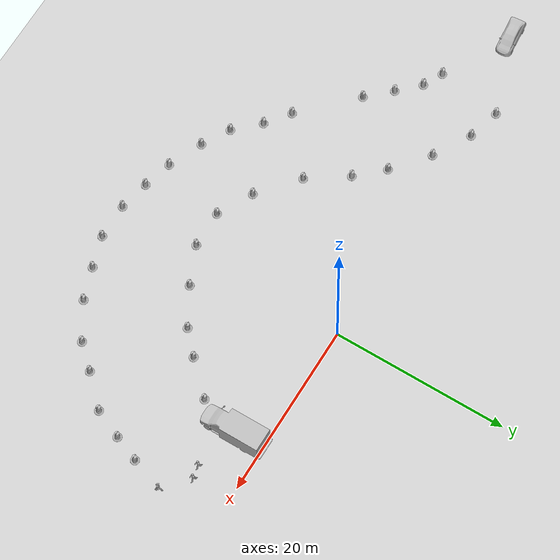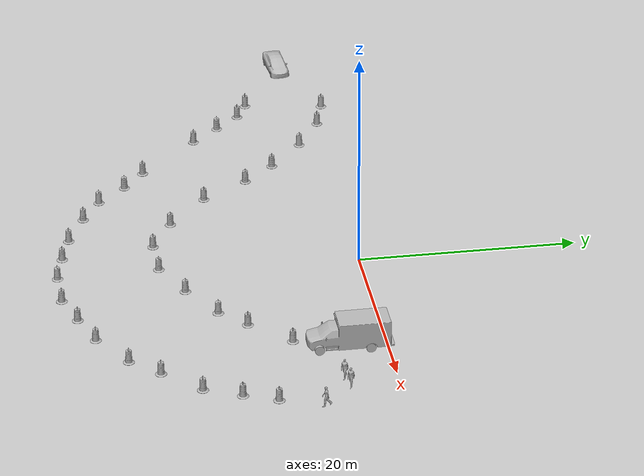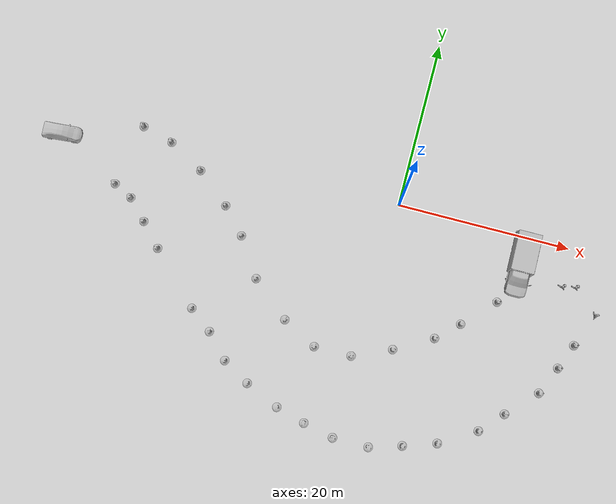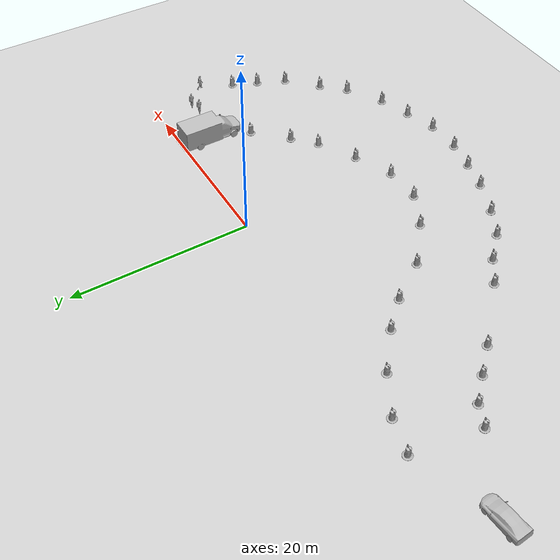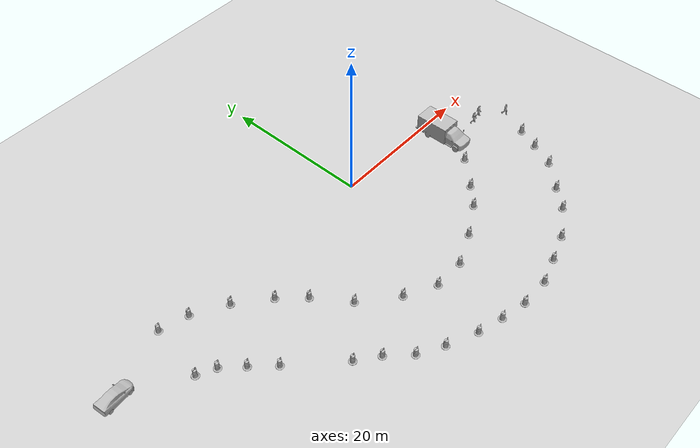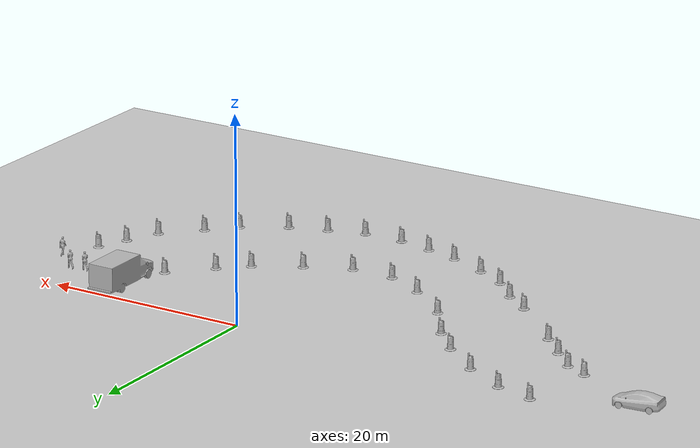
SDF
<sdf version="1.6">
 <world name="default">
  <scene>
   <sky><clouds><speed>12</speed></clouds></sky>
   <ambient>0.4 0.4 0.4 1</ambient>
   <background>0.7 0.7 0.7 1</background>
   <shadows>1</shadows>
  </scene>
  <light name="sun" type="directional">
   <pose>0 0 10 0 -0 0</pose>
   <diffuse>0.8 0.8 0.8 1</diffuse>
   <specular>0.2 0.2 0.2 1</specular>
   <attenuation>
    <range>1000</range>
    <constant>0.9</constant>
    <linear>0.01</linear>
    <quadratic>0.001</quadratic>
   </attenuation>
   <direction>-0.5 0.1 -0.9</direction>
  </light>
  <model name="ground_plane">
   <static>1</static>
   <link name="link">
    <collision name="collision">
     <geometry><plane><normal>0 0 1</normal><size>100 100</size></plane></geometry>
     <surface>
      <contact><collide_bitmask>65535</collide_bitmask></contact>
      <friction><ode><mu>100</mu><mu2>50</mu2></ode></friction>
     </surface>
    </collision>
    <visual name="visual">
     <cast_shadows>0</cast_shadows>
     <geometry><plane><normal>0 0 1</normal><size>100 100</size></plane></geometry>
     <material>
      <script><uri>file://media/materials/scripts/gazebo.material</uri><name>Gazebo/Grey</name></script>
     </material>
    </visual>
   </link>
  </model>
  <gravity>0 0 -9.8</gravity>
  <magnetic_field>6e-06 2.3e-05 -4.2e-05</magnetic_field>
  <atmosphere type="adiabatic"/>
  <physics name="default_physics" default="0" type="ode">
   <max_step_size>0.001</max_step_size>
   <real_time_factor>1</real_time_factor>
   <real_time_update_rate>1000</real_time_update_rate>
  </physics>
  <spherical_coordinates>
   <surface_model>EARTH_WGS84</surface_model>
   <latitude_deg>0</latitude_deg>
   <longitude_deg>0</longitude_deg>
   <elevation>0</elevation>
   <heading_deg>0</heading_deg>
  </spherical_coordinates>
  <model name="prius">
   <link name="base_link">
    <inertial>
     <mass>1</mass>
     <inertia><ixx>0.001</ixx><ixy>0</ixy><ixz>0</ixz><iyy>0.001</iyy><iyz>0</iyz><izz>0.001</izz></inertia>
    </inertial>
   </link>
   <link name="chassis">
    <pose>1.45 0 0 0 -0 1.57</pose>
    <inertial>
     <pose>-0 -0.002735 0.483209 0 -0 1.5708</pose>
     <mass>1371</mass>
     <inertia>
      <ixx>2591.3</ixx>
      <ixy>0.000184475</ixy>
      <ixz>-0.702035</ixz>
      <iyy>651.702</iyy>
      <iyz>2.57872e-06</iyz>
      <izz>2744.57</izz>
     </inertia>
    </inertial>
    <collision name="chassis_collision">
     <pose>0 0.05 0.625 0 -0 0</pose>
     <geometry><box><size>1.7526 2.1 0.95</size></box></geometry>
    </collision>
    <collision name="chassis_fixed_joint_lump__front_bumper_collision_1">
     <pose>0 -2 0.458488 0 -0 0</pose>
     <geometry><box><size>1.33728 0.48 0.566691</size></box></geometry>
    </collision>
    <collision name="chassis_fixed_joint_lump__hood_collision_2">
     <pose>0 -1.90084 0.676305 0.341247 -0 0</pose>
     <geometry><box><size>1.59797 0.493107 0.265468</size></box></geometry>
    </collision>
    <collision name="chassis_fixed_joint_lump__windshield_collision_3">
     <pose>0 -0.875105 1.03227 0.335476 -0 0</pose>
     <geometry><box><size>1.16838 1.65425 0.272347</size></box></geometry>
    </collision>
    <collision name="chassis_fixed_joint_lump__top_front_collision_4">
     <pose>0 0.161236 1.38604 0.13503 -0 0</pose>
     <geometry><box><size>1.27915 0.625988 0.171868</size></box></geometry>
    </collision>
    <collision name="chassis_fixed_joint_lump__top_rear_collision_5">
     <pose>0 0.817696 1.36007 -0.068997 0 0</pose>
     <geometry><box><size>1.28513 0.771189 0.226557</size></box></geometry>
    </collision>
    <collision name="chassis_fixed_joint_lump__rear_window_collision_6">
     <pose>0 1.64053 1.17513 -0.262017 0 0</pose>
     <geometry><box><size>1.26785 1.11634 0.244286</size></box></geometry>
    </collision>
    <collision name="chassis_fixed_joint_lump__trunk_collision_7">
     <pose>0 1.63706 0.88818 0 -0 0</pose>
     <geometry><box><size>1.78806 1.13899 0.482746</size></box></geometry>
    </collision>
    <collision name="chassis_fixed_joint_lump__back_bumper_collision_8">
     <pose>0 2.05445 0.57787 0 -0 0</pose>
     <geometry><box><size>1.78165 0.512093 0.581427</size></box></geometry>
    </collision>
    <visual name="chassis_visual">
     <geometry>
      <mesh><scale>0.01 0.01 0.01</scale><uri>model://../../prius_description/meshes/hybrid_body.obj</uri></mesh>
     </geometry>
    </visual>
    <sensor name="center_laser_sensor" type="ray">
     <ray>
      <scan>
       <horizontal>
        <samples>512</samples>
        <resolution>1</resolution>
        <min_angle>-3.14</min_angle>
        <max_angle>3.14</max_angle>
       </horizontal>
       <vertical><samples>16</samples><min_angle>-0.1</min_angle><max_angle>-0.35</max_angle></vertical>
      </scan>
      <range><min>0.2</min><max>30</max><resolution>0.01</resolution></range>
     </ray>
     <plugin name="center_laser" filename="libgazebo_ros_block_laser.so">
      <topicName>/prius/center_laser/scan</topicName>
      <frameName>center_laser_link</frameName>
      <gaussianNoise>0.01</gaussianNoise>
      <robotNamespace>/</robotNamespace>
     </plugin>
     <always_on>1</always_on>
     <update_rate>30</update_rate>
     <visualize>0</visualize>
     <pose>0 0.4 1.8 0 0 -1.5707</pose>
    </sensor>
    <sensor name="front_camera_sensor" type="camera">
     <update_rate>30</update_rate>
     <camera name="front_camera">
      <horizontal_fov>1.39626</horizontal_fov>
      <image><width>800</width><height>800</height><format>R8G8B8</format></image>
      <clip><near>0.02</near><far>300</far></clip>
      <noise><type>gaussian</type><mean>0</mean><stddev>0.007</stddev></noise>
     </camera>
     <plugin name="front_camera_controller" filename="libgazebo_ros_camera.so">
      <alwaysOn>1</alwaysOn>
      <updateRate>0.0</updateRate>
      <cameraName>/prius/front_camera</cameraName>
      <imageTopicName>image_raw</imageTopicName>
      <cameraInfoTopicName>/prius/front_camera_info</cameraInfoTopicName>
      <frameName>camera_link</frameName>
      <hackBaseline>0.07</hackBaseline>
      <distortionK1>0.0</distortionK1>
      <distortionK2>0.0</distortionK2>
      <distortionK3>0.0</distortionK3>
      <distortionT1>0.0</distortionT1>
      <distortionT2>0.0</distortionT2>
      <robotNamespace>/</robotNamespace>
     </plugin>
     <pose>0 -0.4 1.4 0 0.05 -1.5707</pose>
    </sensor>
   </link>
   <joint name="base_link_connection" type="revolute">
    <child>chassis</child>
    <parent>base_link</parent>
    <axis>
     <limit><lower>0</lower><upper>0</upper></limit>
     <dynamics>
      <damping>0</damping>
      <friction>0</friction>
      <spring_reference>0</spring_reference>
      <spring_stiffness>0</spring_stiffness>
     </dynamics>
     <use_parent_model_frame>1</use_parent_model_frame>
     <xyz>0 0 1</xyz>
    </axis>
    <physics><ode><limit><cfm>0</cfm><erp>0.2</erp></limit></ode></physics>
   </joint>
   <link name="fl_axle">
    <pose>2.86061 0.765877 0.3 0 -0 1.57</pose>
    <inertial>
     <mass>1</mass>
     <inertia><ixx>0.004</ixx><ixy>0</ixy><ixz>0</ixz><iyy>0.004</iyy><iyz>0</iyz><izz>0.004</izz></inertia>
    </inertial>
   </link>
   <joint name="front_left_steer_joint" type="revolute">
    <child>fl_axle</child>
    <parent>chassis</parent>
    <axis>
     <xyz>0 0 1</xyz>
     <limit><lower>-1e+16</lower><upper>1e+16</upper></limit>
     <dynamics><spring_reference>0</spring_reference><spring_stiffness>0</spring_stiffness></dynamics>
     <use_parent_model_frame>1</use_parent_model_frame>
    </axis>
   </joint>
   <link name="front_left_wheel">
    <pose>2.86061 0.765877 0.3 0 -0 1.57</pose>
    <inertial>
     <mass>11</mass>
     <inertia>
      <ixx>0.586312</ixx>
      <ixy>0</ixy>
      <ixz>0</ixz>
      <iyy>0.335529</iyy>
      <iyz>0</iyz>
      <izz>0.335529</izz>
     </inertia>
    </inertial>
    <collision name="front_left_wheel_collision_collision">
     <geometry><sphere><radius>0.31265</radius></sphere></geometry>
     <surface>
      <contact><ode><kp>1e+08</kp><min_depth>0.005</min_depth></ode></contact>
      <friction><ode><mu>0.9</mu><mu2>0.9</mu2></ode></friction>
     </surface>
    </collision>
    <visual name="front_left_wheel_visual">
     <geometry>
      <mesh><scale>0.01 0.01 0.01</scale><uri>model://../../prius_description/meshes/wheel.obj</uri></mesh>
     </geometry>
     <material><script><uri>__default__</uri><name>__default__</name></script></material>
    </visual>
   </link>
   <joint name="front_left_wheel_joint" type="revolute">
    <child>front_left_wheel</child>
    <parent>fl_axle</parent>
    <axis>
     <xyz>0.000796 1 0</xyz>
     <limit><lower>-1e+16</lower><upper>1e+16</upper></limit>
     <dynamics><spring_reference>0</spring_reference><spring_stiffness>0</spring_stiffness></dynamics>
     <use_parent_model_frame>1</use_parent_model_frame>
    </axis>
   </joint>
   <link name="fr_axle">
    <pose>2.85939 -0.768123 0.3 0 -0 1.57</pose>
    <inertial>
     <mass>1</mass>
     <inertia><ixx>0.004</ixx><ixy>0</ixy><ixz>0</ixz><iyy>0.004</iyy><iyz>0</iyz><izz>0.004</izz></inertia>
    </inertial>
   </link>
   <joint name="front_right_steer_joint" type="revolute">
    <child>fr_axle</child>
    <parent>chassis</parent>
    <axis>
     <xyz>0 0 1</xyz>
     <limit><lower>-1e+16</lower><upper>1e+16</upper></limit>
     <dynamics><spring_reference>0</spring_reference><spring_stiffness>0</spring_stiffness></dynamics>
     <use_parent_model_frame>1</use_parent_model_frame>
    </axis>
   </joint>
   <link name="front_right_wheel">
    <pose>2.85939 -0.768123 0.3 0 -0 1.57</pose>
    <inertial>
     <mass>11</mass>
     <inertia>
      <ixx>0.586312</ixx>
      <ixy>0</ixy>
      <ixz>0</ixz>
      <iyy>0.335529</iyy>
      <iyz>0</iyz>
      <izz>0.335529</izz>
     </inertia>
    </inertial>
    <collision name="front_right_wheel_collision_collision">
     <geometry><sphere><radius>0.31265</radius></sphere></geometry>
     <surface>
      <contact><ode><kp>1e+08</kp><min_depth>0.005</min_depth></ode></contact>
      <friction><ode><mu>0.9</mu><mu2>0.9</mu2></ode></friction>
     </surface>
    </collision>
    <visual name="front_right_wheel_visual">
     <geometry>
      <mesh><scale>0.01 0.01 0.01</scale><uri>model://../../prius_description/meshes/wheel.obj</uri></mesh>
     </geometry>
     <material><script><uri>__default__</uri><name>__default__</name></script></material>
    </visual>
   </link>
   <joint name="front_right_wheel_joint" type="revolute">
    <child>front_right_wheel</child>
    <parent>fr_axle</parent>
    <axis>
     <xyz>0.000796 1 0</xyz>
     <limit><lower>-1e+16</lower><upper>1e+16</upper></limit>
     <dynamics><spring_reference>0</spring_reference><spring_stiffness>0</spring_stiffness></dynamics>
     <use_parent_model_frame>1</use_parent_model_frame>
    </axis>
   </joint>
   <link name="rear_left_wheel">
    <pose>0.000632 0.794154 0.3 0 -0 1.57</pose>
    <inertial>
     <mass>11</mass>
     <inertia>
      <ixx>0.586312</ixx>
      <ixy>0</ixy>
      <ixz>0</ixz>
      <iyy>0.335529</iyy>
      <iyz>0</iyz>
      <izz>0.335529</izz>
     </inertia>
    </inertial>
    <collision name="rear_left_wheel_collision_collision">
     <geometry><sphere><radius>0.31265</radius></sphere></geometry>
     <surface>
      <contact><ode><kp>1e+08</kp><min_depth>0.005</min_depth></ode></contact>
      <friction><ode><mu>0.9</mu><mu2>0.9</mu2></ode></friction>
     </surface>
    </collision>
    <visual name="rear_left_wheel_visual">
     <geometry>
      <mesh><scale>0.01 0.01 0.01</scale><uri>model://../../prius_description/meshes/wheel.obj</uri></mesh>
     </geometry>
     <material><script><uri>__default__</uri><name>__default__</name></script></material>
    </visual>
   </link>
   <joint name="rear_left_wheel_joint" type="revolute">
    <child>rear_left_wheel</child>
    <parent>chassis</parent>
    <axis>
     <xyz>0.000796 1 0</xyz>
     <limit><lower>-1e+16</lower><upper>1e+16</upper></limit>
     <dynamics><spring_reference>0</spring_reference><spring_stiffness>0</spring_stiffness></dynamics>
     <use_parent_model_frame>1</use_parent_model_frame>
    </axis>
   </joint>
   <link name="rear_right_wheel">
    <pose>-0.000631 -0.791845 0.3 0 -0 1.57</pose>
    <inertial>
     <mass>11</mass>
     <inertia>
      <ixx>0.586312</ixx>
      <ixy>0</ixy>
      <ixz>0</ixz>
      <iyy>0.335529</iyy>
      <iyz>0</iyz>
      <izz>0.335529</izz>
     </inertia>
    </inertial>
    <collision name="rear_right_wheel_collision_collision">
     <geometry><sphere><radius>0.31265</radius></sphere></geometry>
     <surface>
      <contact><ode><kp>1e+08</kp><min_depth>0.005</min_depth></ode></contact>
      <friction><ode><mu>0.9</mu><mu2>0.9</mu2></ode></friction>
     </surface>
    </collision>
    <visual name="rear_right_wheel_visual">
     <geometry>
      <mesh><scale>0.01 0.01 0.01</scale><uri>model://../../prius_description/meshes/wheel.obj</uri></mesh>
     </geometry>
     <material><script><uri>__default__</uri><name>__default__</name></script></material>
    </visual>
   </link>
   <joint name="rear_right_wheel_joint" type="revolute">
    <child>rear_right_wheel</child>
    <parent>chassis</parent>
    <axis>
     <xyz>0.000796 1 0</xyz>
     <limit><lower>-1e+16</lower><upper>1e+16</upper></limit>
     <dynamics><spring_reference>0</spring_reference><spring_stiffness>0</spring_stiffness></dynamics>
     <use_parent_model_frame>1</use_parent_model_frame>
    </axis>
   </joint>
   <link name="steering_wheel">
    <pose>2.07815 0.357234 0.988243 -1.3021 0 1.57</pose>
    <inertial>
     <mass>1</mass>
     <inertia><ixx>0.145833</ixx><ixy>0</ixy><ixz>0</ixz><iyy>0.145833</iyy><iyz>0</iyz><izz>0.125</izz></inertia>
    </inertial>
    <visual name="steering_wheel_visual">
     <pose>0 0 0 1.3021 -0 0</pose>
     <geometry>
      <mesh><scale>0.01 0.01 0.01</scale><uri>model://../../prius_description/meshes/steering_wheel.obj</uri></mesh>
     </geometry>
    </visual>
   </link>
   <joint name="steering_joint" type="revolute">
    <child>steering_wheel</child>
    <parent>chassis</parent>
    <axis>
     <xyz>-0.964118 0.000768 0.265474</xyz>
     <limit><lower>-1e+16</lower><upper>1e+16</upper></limit>
     <dynamics><spring_reference>0</spring_reference><spring_stiffness>0</spring_stiffness></dynamics>
     <use_parent_model_frame>1</use_parent_model_frame>
    </axis>
   </joint>
   <plugin name="pruis_hybrid_drive" filename="libPriusHybridPlugin.so">
    <chassis>chassis</chassis>
    <front_left_wheel>front_left_wheel_joint</front_left_wheel>
    <front_right_wheel>front_right_wheel_joint</front_right_wheel>
    <front_left_wheel_steering>front_left_steer_joint</front_left_wheel_steering>
    <front_right_wheel_steering>front_right_steer_joint</front_right_wheel_steering>
    <back_left_wheel>rear_left_wheel_joint</back_left_wheel>
    <back_right_wheel>rear_right_wheel_joint</back_right_wheel>
    <steering_wheel>steering_joint</steering_wheel>
    <chassis_aero_force_gain>0.63045</chassis_aero_force_gain>
    <front_torque>859.4004393000001</front_torque>
    <back_torque>0</back_torque>
    <front_brake_torque>1031.28052716</front_brake_torque>
    <back_brake_torque>687.5203514400001</back_brake_torque>
    <max_speed>5</max_speed>
    <min_gas_flow>8.981854013171626e-05</min_gas_flow>
    <gas_efficiency>0.371</gas_efficiency>
    <battery_charge_watt_hours>291</battery_charge_watt_hours>
    <battery_discharge_watt_hours>214</battery_discharge_watt_hours>
    <max_steer>0.6458</max_steer>
    <flwheel_steering_p_gain>1e4</flwheel_steering_p_gain>
    <frwheel_steering_p_gain>1e4</frwheel_steering_p_gain>
    <flwheel_steering_i_gain>0</flwheel_steering_i_gain>
    <frwheel_steering_i_gain>0</frwheel_steering_i_gain>
    <flwheel_steering_d_gain>3e2</flwheel_steering_d_gain>
    <frwheel_steering_d_gain>3e2</frwheel_steering_d_gain>
    <robotNamespace>/</robotNamespace>
   </plugin>
   <plugin name="joint_state_publisher" filename="libgazebo_ros_joint_state_publisher.so">
    <jointName>rear_right_wheel_joint, rear_left_wheel_joint, front_right_wheel_joint, front_left_wheel_joint, front_right_steer_joint, front_left_steer_joint, steering_joint</jointName>
    <updateRate>100.0</updateRate>
    <alwaysOn>1</alwaysOn>
    <robotNamespace>/</robotNamespace>
   </plugin>
   <static>0</static>
   <plugin name="p3d" filename="libgazebo_ros_p3d.so">
    <bodyName>base_link</bodyName>
    <topicName>base_pose_ground_truth</topicName>
    <frameName>map</frameName>
    <updateRate>100.0</updateRate>
    <robotNamespace>/</robotNamespace>
   </plugin>
   <pose>-41.4114 -1.92893 0.006903 0 0.000236 0.087765</pose>
  </model>
  <model name="Construction Barrel">
   <link name="link">
    <inertial>
     <pose>0 0 0.4 0 -0 0</pose>
     <mass>500</mass>
     <inertia><ixx>51.2096</ixx><iyy>51.2096</iyy><izz>25</izz><ixy>0</ixy><ixz>0</ixz><iyz>0</iyz></inertia>
    </inertial>
    <collision name="collision">
     <geometry><mesh><uri>model://construction_barrel/meshes/construction_barrel.dae</uri></mesh></geometry>
    </collision>
    <visual name="visual">
     <geometry><mesh><uri>model://construction_barrel/meshes/construction_barrel.dae</uri></mesh></geometry>
    </visual>
   </link>
   <pose>-31.1944 1.41582 -2e-06 6e-06 -4e-06 -2.3e-05</pose>
  </model>
  <model name="Construction Barrel_0">
   <link name="link">
    <inertial>
     <pose>0 0 0.4 0 -0 0</pose>
     <mass>500</mass>
     <inertia><ixx>51.2096</ixx><iyy>51.2096</iyy><izz>25</izz><ixy>0</ixy><ixz>0</ixz><iyz>0</iyz></inertia>
    </inertial>
    <collision name="collision">
     <geometry><mesh><uri>model://construction_barrel/meshes/construction_barrel.dae</uri></mesh></geometry>
    </collision>
    <visual name="visual">
     <geometry><mesh><uri>model://construction_barrel/meshes/construction_barrel.dae</uri></mesh></geometry>
    </visual>
   </link>
   <pose>-27.4893 0.429471 -2e-06 6e-06 -4e-06 -2.2e-05</pose>
  </model>
  <model name="Construction Barrel_1">
   <link name="link">
    <inertial>
     <pose>0 0 0.4 0 -0 0</pose>
     <mass>500</mass>
     <inertia><ixx>51.2096</ixx><iyy>51.2096</iyy><izz>25</izz><ixy>0</ixy><ixz>0</ixz><iyz>0</iyz></inertia>
    </inertial>
    <collision name="collision">
     <geometry><mesh><uri>model://construction_barrel/meshes/construction_barrel.dae</uri></mesh></geometry>
    </collision>
    <visual name="visual">
     <geometry><mesh><uri>model://construction_barrel/meshes/construction_barrel.dae</uri></mesh></geometry>
    </visual>
   </link>
   <pose>-23.2751 -1.96116 -2e-06 6e-06 -4e-06 -2.1e-05</pose>
  </model>
  <model name="Construction Barrel_2">
   <link name="link">
    <inertial>
     <pose>0 0 0.4 0 -0 0</pose>
     <mass>500</mass>
     <inertia><ixx>51.2096</ixx><iyy>51.2096</iyy><izz>25</izz><ixy>0</ixy><ixz>0</ixz><iyz>0</iyz></inertia>
    </inertial>
    <collision name="collision">
     <geometry><mesh><uri>model://construction_barrel/meshes/construction_barrel.dae</uri></mesh></geometry>
    </collision>
    <visual name="visual">
     <geometry><mesh><uri>model://construction_barrel/meshes/construction_barrel.dae</uri></mesh></geometry>
    </visual>
   </link>
   <pose>-19.3142 -5.21222 -2e-06 6e-06 -4e-06 -2e-05</pose>
  </model>
  <model name="Construction Barrel_1_clone">
   <link name="link">
    <inertial>
     <pose>0 0 0.4 0 -0 0</pose>
     <mass>500</mass>
     <inertia><ixx>51.2096</ixx><iyy>51.2096</iyy><izz>25</izz><ixy>0</ixy><ixz>0</ixz><iyz>0</iyz></inertia>
    </inertial>
    <collision name="collision">
     <geometry><mesh><uri>model://construction_barrel/meshes/construction_barrel.dae</uri></mesh></geometry>
    </collision>
    <visual name="visual">
     <geometry><mesh><uri>model://construction_barrel/meshes/construction_barrel.dae</uri></mesh></geometry>
    </visual>
   </link>
   <pose>-16.5963 -8.13898 -2e-06 6e-06 -4e-06 -2e-05</pose>
  </model>
  <model name="Construction Barrel_1_clone_0">
   <link name="link">
    <inertial>
     <pose>0 0 0.4 0 -0 0</pose>
     <mass>500</mass>
     <inertia><ixx>51.2096</ixx><iyy>51.2096</iyy><izz>25</izz><ixy>0</ixy><ixz>0</ixz><iyz>0</iyz></inertia>
    </inertial>
    <collision name="collision">
     <geometry><mesh><uri>model://construction_barrel/meshes/construction_barrel.dae</uri></mesh></geometry>
    </collision>
    <visual name="visual">
     <geometry><mesh><uri>model://construction_barrel/meshes/construction_barrel.dae</uri></mesh></geometry>
    </visual>
   </link>
   <pose>-13.64 -12.4685 -2e-06 6e-06 -4e-06 -2e-05</pose>
  </model>
  <model name="Construction Barrel_1_clone_1">
   <link name="link">
    <inertial>
     <pose>0 0 0.4 0 -0 0</pose>
     <mass>500</mass>
     <inertia><ixx>51.2096</ixx><iyy>51.2096</iyy><izz>25</izz><ixy>0</ixy><ixz>0</ixz><iyz>0</iyz></inertia>
    </inertial>
    <collision name="collision">
     <geometry><mesh><uri>model://construction_barrel/meshes/construction_barrel.dae</uri></mesh></geometry>
    </collision>
    <visual name="visual">
     <geometry><mesh><uri>model://construction_barrel/meshes/construction_barrel.dae</uri></mesh></geometry>
    </visual>
   </link>
   <pose>-32.4126 -6.0217 -2e-06 6e-06 -4e-06 -1.9e-05</pose>
  </model>
  <model name="Construction Barrel_1_clone_2">
   <link name="link">
    <inertial>
     <pose>0 0 0.4 0 -0 0</pose>
     <mass>500</mass>
     <inertia><ixx>51.2096</ixx><iyy>51.2096</iyy><izz>25</izz><ixy>0</ixy><ixz>0</ixz><iyz>0</iyz></inertia>
    </inertial>
    <collision name="collision">
     <geometry><mesh><uri>model://construction_barrel/meshes/construction_barrel.dae</uri></mesh></geometry>
    </collision>
    <visual name="visual">
     <geometry><mesh><uri>model://construction_barrel/meshes/construction_barrel.dae</uri></mesh></geometry>
    </visual>
   </link>
   <pose>-30.1669 -7.12313 -2e-06 6e-06 -4e-06 -1.9e-05</pose>
  </model>
  <model name="Construction Barrel_1_clone_3">
   <link name="link">
    <inertial>
     <pose>0 0 0.4 0 -0 0</pose>
     <mass>500</mass>
     <inertia><ixx>51.2096</ixx><iyy>51.2096</iyy><izz>25</izz><ixy>0</ixy><ixz>0</ixz><iyz>0</iyz></inertia>
    </inertial>
    <collision name="collision">
     <geometry><mesh><uri>model://construction_barrel/meshes/construction_barrel.dae</uri></mesh></geometry>
    </collision>
    <visual name="visual">
     <geometry><mesh><uri>model://construction_barrel/meshes/construction_barrel.dae</uri></mesh></geometry>
    </visual>
   </link>
   <pose>-27.9078 -9.42812 -2e-06 6e-06 -4e-06 -1.9e-05</pose>
  </model>
  <model name="Construction Barrel_1_clone_4">
   <link name="link">
    <inertial>
     <pose>0 0 0.4 0 -0 0</pose>
     <mass>500</mass>
     <inertia><ixx>51.2096</ixx><iyy>51.2096</iyy><izz>25</izz><ixy>0</ixy><ixz>0</ixz><iyz>0</iyz></inertia>
    </inertial>
    <collision name="collision">
     <geometry><mesh><uri>model://construction_barrel/meshes/construction_barrel.dae</uri></mesh></geometry>
    </collision>
    <visual name="visual">
     <geometry><mesh><uri>model://construction_barrel/meshes/construction_barrel.dae</uri></mesh></geometry>
    </visual>
   </link>
   <pose>-25.4558 -12.0164 -2e-06 6e-06 -4e-06 -1.9e-05</pose>
  </model>
  <model name="Construction Barrel_1_clone_5">
   <link name="link">
    <inertial>
     <pose>0 0 0.4 0 -0 0</pose>
     <mass>500</mass>
     <inertia><ixx>51.2096</ixx><iyy>51.2096</iyy><izz>25</izz><ixy>0</ixy><ixz>0</ixz><iyz>0</iyz></inertia>
    </inertial>
    <collision name="collision">
     <geometry><mesh><uri>model://construction_barrel/meshes/construction_barrel.dae</uri></mesh></geometry>
    </collision>
    <visual name="visual">
     <geometry><mesh><uri>model://construction_barrel/meshes/construction_barrel.dae</uri></mesh></geometry>
    </visual>
   </link>
   <pose>-19.7495 -17.5857 -2e-06 6e-06 -4e-06 -1.9e-05</pose>
  </model>
  <model name="Construction Barrel_1_clone_6">
   <link name="link">
    <inertial>
     <pose>0 0 0.4 0 -0 0</pose>
     <mass>500</mass>
     <inertia><ixx>51.2096</ixx><iyy>51.2096</iyy><izz>25</izz><ixy>0</ixy><ixz>0</ixz><iyz>0</iyz></inertia>
    </inertial>
    <collision name="collision">
     <geometry><mesh><uri>model://construction_barrel/meshes/construction_barrel.dae</uri></mesh></geometry>
    </collision>
    <visual name="visual">
     <geometry><mesh><uri>model://construction_barrel/meshes/construction_barrel.dae</uri></mesh></geometry>
    </visual>
   </link>
   <pose>-17.0943 -19.6017 -2e-06 6e-06 -4e-06 -1.9e-05</pose>
  </model>
  <model name="Construction Barrel_1_clone_8">
   <link name="link">
    <inertial>
     <pose>0 0 0.4 0 -0 0</pose>
     <mass>500</mass>
     <inertia><ixx>51.2096</ixx><iyy>51.2096</iyy><izz>25</izz><ixy>0</ixy><ixz>0</ixz><iyz>0</iyz></inertia>
    </inertial>
    <collision name="collision">
     <geometry><mesh><uri>model://construction_barrel/meshes/construction_barrel.dae</uri></mesh></geometry>
    </collision>
    <visual name="visual">
     <geometry><mesh><uri>model://construction_barrel/meshes/construction_barrel.dae</uri></mesh></geometry>
    </visual>
   </link>
   <pose>-9.24704 -16.1333 -2e-06 6e-06 -4e-06 -1.9e-05</pose>
  </model>
  <model name="Construction Barrel_1_clone_7">
   <link name="link">
    <inertial>
     <pose>0 0 0.4 0 -0 0</pose>
     <mass>500</mass>
     <inertia><ixx>51.2096</ixx><iyy>51.2096</iyy><izz>25</izz><ixy>0</ixy><ixz>0</ixz><iyz>0</iyz></inertia>
    </inertial>
    <collision name="collision">
     <geometry><mesh><uri>model://construction_barrel/meshes/construction_barrel.dae</uri></mesh></geometry>
    </collision>
    <visual name="visual">
     <geometry><mesh><uri>model://construction_barrel/meshes/construction_barrel.dae</uri></mesh></geometry>
    </visual>
   </link>
   <pose>-14.5323 -22.2554 -2e-06 6e-06 -4e-06 -1.8e-05</pose>
  </model>
  <model name="Construction Barrel_1_clone_9">
   <link name="link">
    <inertial>
     <pose>0 0 0.4 0 -0 0</pose>
     <mass>500</mass>
     <inertia><ixx>51.2096</ixx><iyy>51.2096</iyy><izz>25</izz><ixy>0</ixy><ixz>0</ixz><iyz>0</iyz></inertia>
    </inertial>
    <collision name="collision">
     <geometry><mesh><uri>model://construction_barrel/meshes/construction_barrel.dae</uri></mesh></geometry>
    </collision>
    <visual name="visual">
     <geometry><mesh><uri>model://construction_barrel/meshes/construction_barrel.dae</uri></mesh></geometry>
    </visual>
   </link>
   <pose>-11.4295 -24.0213 -2e-06 6e-06 -4e-06 -2.6e-05</pose>
  </model>
  <model name="Construction Barrel_1_clone_10">
   <link name="link">
    <inertial>
     <pose>0 0 0.4 0 -0 0</pose>
     <mass>500</mass>
     <inertia><ixx>51.2096</ixx><iyy>51.2096</iyy><izz>25</izz><ixy>0</ixy><ixz>0</ixz><iyz>0</iyz></inertia>
    </inertial>
    <collision name="collision">
     <geometry><mesh><uri>model://construction_barrel/meshes/construction_barrel.dae</uri></mesh></geometry>
    </collision>
    <visual name="visual">
     <geometry><mesh><uri>model://construction_barrel/meshes/construction_barrel.dae</uri></mesh></geometry>
    </visual>
   </link>
   <pose>-7.55242 -25.6931 -2e-06 6e-06 -4e-06 -1.6e-05</pose>
  </model>
  <model name="Construction Barrel_1_clone_11">
   <link name="link">
    <inertial>
     <pose>0 0 0.4 0 -0 0</pose>
     <mass>500</mass>
     <inertia><ixx>51.2096</ixx><iyy>51.2096</iyy><izz>25</izz><ixy>0</ixy><ixz>0</ixz><iyz>0</iyz></inertia>
    </inertial>
    <collision name="collision">
     <geometry><mesh><uri>model://construction_barrel/meshes/construction_barrel.dae</uri></mesh></geometry>
    </collision>
    <visual name="visual">
     <geometry><mesh><uri>model://construction_barrel/meshes/construction_barrel.dae</uri></mesh></geometry>
    </visual>
   </link>
   <pose>-4.21758 -26.5821 -2e-06 6e-06 -4e-06 -2.6e-05</pose>
  </model>
  <model name="Construction Barrel_1_clone_12">
   <link name="link">
    <inertial>
     <pose>0 0 0.4 0 -0 0</pose>
     <mass>500</mass>
     <inertia><ixx>51.2096</ixx><iyy>51.2096</iyy><izz>25</izz><ixy>0</ixy><ixz>0</ixz><iyz>0</iyz></inertia>
    </inertial>
    <collision name="collision">
     <geometry><mesh><uri>model://construction_barrel/meshes/construction_barrel.dae</uri></mesh></geometry>
    </collision>
    <visual name="visual">
     <geometry><mesh><uri>model://construction_barrel/meshes/construction_barrel.dae</uri></mesh></geometry>
    </visual>
   </link>
   <pose>-0.751617 -27.2982 -2e-06 6e-06 -4e-06 -1.6e-05</pose>
  </model>
  <model name="Construction Barrel_1_clone_13">
   <link name="link">
    <inertial>
     <pose>0 0 0.4 0 -0 0</pose>
     <mass>500</mass>
     <inertia><ixx>51.2096</ixx><iyy>51.2096</iyy><izz>25</izz><ixy>0</ixy><ixz>0</ixz><iyz>0</iyz></inertia>
    </inertial>
    <collision name="collision">
     <geometry><mesh><uri>model://construction_barrel/meshes/construction_barrel.dae</uri></mesh></geometry>
    </collision>
    <visual name="visual">
     <geometry><mesh><uri>model://construction_barrel/meshes/construction_barrel.dae</uri></mesh></geometry>
    </visual>
   </link>
   <pose>3.3025 -27.2616 -2e-06 6e-06 -4e-06 -2.6e-05</pose>
  </model>
  <model name="Construction Barrel_1_clone_14">
   <link name="link">
    <inertial>
     <pose>0 0 0.4 0 -0 0</pose>
     <mass>500</mass>
     <inertia><ixx>51.2096</ixx><iyy>51.2096</iyy><izz>25</izz><ixy>0</ixy><ixz>0</ixz><iyz>0</iyz></inertia>
    </inertial>
    <collision name="collision">
     <geometry><mesh><uri>model://construction_barrel/meshes/construction_barrel.dae</uri></mesh></geometry>
    </collision>
    <visual name="visual">
     <geometry><mesh><uri>model://construction_barrel/meshes/construction_barrel.dae</uri></mesh></geometry>
    </visual>
   </link>
   <pose>6.87565 -26.167 -2e-06 6e-06 -4e-06 -2.6e-05</pose>
  </model>
  <model name="Construction Barrel_1_clone_15">
   <link name="link">
    <inertial>
     <pose>0 0 0.4 0 -0 0</pose>
     <mass>500</mass>
     <inertia><ixx>51.2096</ixx><iyy>51.2096</iyy><izz>25</izz><ixy>0</ixy><ixz>0</ixz><iyz>0</iyz></inertia>
    </inertial>
    <collision name="collision">
     <geometry><mesh><uri>model://construction_barrel/meshes/construction_barrel.dae</uri></mesh></geometry>
    </collision>
    <visual name="visual">
     <geometry><mesh><uri>model://construction_barrel/meshes/construction_barrel.dae</uri></mesh></geometry>
    </visual>
   </link>
   <pose>10.5338 -24.9223 -2e-06 6e-06 -4e-06 -2.6e-05</pose>
  </model>
  <model name="Construction Barrel_1_clone_16">
   <link name="link">
    <inertial>
     <pose>0 0 0.4 0 -0 0</pose>
     <mass>500</mass>
     <inertia><ixx>51.2096</ixx><iyy>51.2096</iyy><izz>25</izz><ixy>0</ixy><ixz>0</ixz><iyz>0</iyz></inertia>
    </inertial>
    <collision name="collision">
     <geometry><mesh><uri>model://construction_barrel/meshes/construction_barrel.dae</uri></mesh></geometry>
    </collision>
    <visual name="visual">
     <geometry><mesh><uri>model://construction_barrel/meshes/construction_barrel.dae</uri></mesh></geometry>
    </visual>
   </link>
   <pose>14.607 -22.4607 -2e-06 6e-06 -4e-06 -1.6e-05</pose>
  </model>
  <model name="Construction Barrel_1_clone_17">
   <link name="link">
    <inertial>
     <pose>0 0 0.4 0 -0 0</pose>
     <mass>500</mass>
     <inertia><ixx>51.2096</ixx><iyy>51.2096</iyy><izz>25</izz><ixy>0</ixy><ixz>0</ixz><iyz>0</iyz></inertia>
    </inertial>
    <collision name="collision">
     <geometry><mesh><uri>model://construction_barrel/meshes/construction_barrel.dae</uri></mesh></geometry>
    </collision>
    <visual name="visual">
     <geometry><mesh><uri>model://construction_barrel/meshes/construction_barrel.dae</uri></mesh></geometry>
    </visual>
   </link>
   <pose>16.9853 -19.9398 -2e-06 6e-06 -4e-06 -2.6e-05</pose>
  </model>
  <model name="Construction Barrel_1_clone_18">
   <link name="link">
    <inertial>
     <pose>0 0 0.4 0 -0 0</pose>
     <mass>500</mass>
     <inertia><ixx>51.2096</ixx><iyy>51.2096</iyy><izz>25</izz><ixy>0</ixy><ixz>0</ixz><iyz>0</iyz></inertia>
    </inertial>
    <collision name="collision">
     <geometry><mesh><uri>model://construction_barrel/meshes/construction_barrel.dae</uri></mesh></geometry>
    </collision>
    <visual name="visual">
     <geometry><mesh><uri>model://construction_barrel/meshes/construction_barrel.dae</uri></mesh></geometry>
    </visual>
   </link>
   <pose>20.1695 -16.7317 -2e-06 6e-06 -4e-06 -2.6e-05</pose>
  </model>
  <model name="Construction Barrel_1_clone_19">
   <link name="link">
    <inertial>
     <pose>0 0 0.4 0 -0 0</pose>
     <mass>500</mass>
     <inertia><ixx>51.2096</ixx><iyy>51.2096</iyy><izz>25</izz><ixy>0</ixy><ixz>0</ixz><iyz>0</iyz></inertia>
    </inertial>
    <collision name="collision">
     <geometry><mesh><uri>model://construction_barrel/meshes/construction_barrel.dae</uri></mesh></geometry>
    </collision>
    <visual name="visual">
     <geometry><mesh><uri>model://construction_barrel/meshes/construction_barrel.dae</uri></mesh></geometry>
    </visual>
   </link>
   <pose>21.6222 -13.5108 -2e-06 6e-06 -4e-06 -2.6e-05</pose>
  </model>
  <model name="Construction Barrel_1_clone_20">
   <link name="link">
    <inertial>
     <pose>0 0 0.4 0 -0 0</pose>
     <mass>500</mass>
     <inertia><ixx>51.2096</ixx><iyy>51.2096</iyy><izz>25</izz><ixy>0</ixy><ixz>0</ixz><iyz>0</iyz></inertia>
    </inertial>
    <collision name="collision">
     <geometry><mesh><uri>model://construction_barrel/meshes/construction_barrel.dae</uri></mesh></geometry>
    </collision>
    <visual name="visual">
     <geometry><mesh><uri>model://construction_barrel/meshes/construction_barrel.dae</uri></mesh></geometry>
    </visual>
   </link>
   <pose>-5.27894 -18.187 -2e-06 6e-06 -4e-06 -1.6e-05</pose>
  </model>
  <model name="Construction Barrel_1_clone_21">
   <link name="link">
    <inertial>
     <pose>0 0 0.4 0 -0 0</pose>
     <mass>500</mass>
     <inertia><ixx>51.2096</ixx><iyy>51.2096</iyy><izz>25</izz><ixy>0</ixy><ixz>0</ixz><iyz>0</iyz></inertia>
    </inertial>
    <collision name="collision">
     <geometry><mesh><uri>model://construction_barrel/meshes/construction_barrel.dae</uri></mesh></geometry>
    </collision>
    <visual name="visual">
     <geometry><mesh><uri>model://construction_barrel/meshes/construction_barrel.dae</uri></mesh></geometry>
    </visual>
   </link>
   <pose>-1.0121 -18.1286 -2e-06 6e-06 -4e-06 -1.6e-05</pose>
  </model>
  <model name="Construction Barrel_1_clone_22">
   <link name="link">
    <inertial>
     <pose>0 0 0.4 0 -0 0</pose>
     <mass>500</mass>
     <inertia><ixx>51.2096</ixx><iyy>51.2096</iyy><izz>25</izz><ixy>0</ixy><ixz>0</ixz><iyz>0</iyz></inertia>
    </inertial>
    <collision name="collision">
     <geometry><mesh><uri>model://construction_barrel/meshes/construction_barrel.dae</uri></mesh></geometry>
    </collision>
    <visual name="visual">
     <geometry><mesh><uri>model://construction_barrel/meshes/construction_barrel.dae</uri></mesh></geometry>
    </visual>
   </link>
   <pose>3.31236 -16.2329 -2e-06 6e-06 -4e-06 -2.6e-05</pose>
  </model>
  <model name="Construction Barrel_1_clone_23">
   <link name="link">
    <inertial>
     <pose>0 0 0.4 0 -0 0</pose>
     <mass>500</mass>
     <inertia><ixx>51.2096</ixx><iyy>51.2096</iyy><izz>25</izz><ixy>0</ixy><ixz>0</ixz><iyz>0</iyz></inertia>
    </inertial>
    <collision name="collision">
     <geometry><mesh><uri>model://construction_barrel/meshes/construction_barrel.dae</uri></mesh></geometry>
    </collision>
    <visual name="visual">
     <geometry><mesh><uri>model://construction_barrel/meshes/construction_barrel.dae</uri></mesh></geometry>
    </visual>
   </link>
   <pose>7.55099 -13.8171 -2e-06 6e-06 -4e-06 -2.6e-05</pose>
  </model>
  <model name="Construction Barrel_1_clone_24">
   <link name="link">
    <inertial>
     <pose>0 0 0.4 0 -0 0</pose>
     <mass>500</mass>
     <inertia><ixx>51.2096</ixx><iyy>51.2096</iyy><izz>25</izz><ixy>0</ixy><ixz>0</ixz><iyz>0</iyz></inertia>
    </inertial>
    <collision name="collision">
     <geometry><mesh><uri>model://construction_barrel/meshes/construction_barrel.dae</uri></mesh></geometry>
    </collision>
    <visual name="visual">
     <geometry><mesh><uri>model://construction_barrel/meshes/construction_barrel.dae</uri></mesh></geometry>
    </visual>
   </link>
   <pose>10.0192 -11.5164 -2e-06 6e-06 -4e-06 -1.6e-05</pose>
  </model>
  <model name="Construction Barrel_1_clone_25">
   <link name="link">
    <inertial>
     <pose>0 0 0.4 0 -0 0</pose>
     <mass>500</mass>
     <inertia><ixx>51.2096</ixx><iyy>51.2096</iyy><izz>25</izz><ixy>0</ixy><ixz>0</ixz><iyz>0</iyz></inertia>
    </inertial>
    <collision name="collision">
     <geometry><mesh><uri>model://construction_barrel/meshes/construction_barrel.dae</uri></mesh></geometry>
    </collision>
    <visual name="visual">
     <geometry><mesh><uri>model://construction_barrel/meshes/construction_barrel.dae</uri></mesh></geometry>
    </visual>
   </link>
   <pose>13.4328 -8.03297 -2e-06 6e-06 -4e-06 -1.6e-05</pose>
  </model>
  <model name="Construction Barrel_1_clone_26">
   <link name="link">
    <inertial>
     <pose>0 0 0.4 0 -0 0</pose>
     <mass>500</mass>
     <inertia><ixx>51.2096</ixx><iyy>51.2096</iyy><izz>25</izz><ixy>0</ixy><ixz>0</ixz><iyz>0</iyz></inertia>
    </inertial>
    <collision name="collision">
     <geometry><mesh><uri>model://construction_barrel/meshes/construction_barrel.dae</uri></mesh></geometry>
    </collision>
    <visual name="visual">
     <geometry><mesh><uri>model://construction_barrel/meshes/construction_barrel.dae</uri></mesh></geometry>
    </visual>
   </link>
   <pose>22.8312 -10.5893 -2e-06 6e-06 -4e-06 -2.6e-05</pose>
  </model>
  <model name="ambulance">
   <static>1</static>
   <link name="link">
    <collision name="collision">
     <geometry>
      <mesh><scale>0.0254 0.0254 0.0254</scale><uri>model://ambulance/meshes/ambulance.obj</uri></mesh>
     </geometry>
    </collision>
    <visual name="visual">
     <geometry>
      <mesh><scale>0.0254 0.0254 0.0254</scale><uri>model://ambulance/meshes/ambulance.obj</uri></mesh>
     </geometry>
    </visual>
   </link>
   <pose>14.9619 -3.21154 0 0 -0 0</pose>
  </model>
  <model name="person_walking">
   <link name="link">
    <inertial>
     <pose>0 0 0.95 0 -0 0</pose>
     <mass>80</mass>
     <inertia><ixx>27.82</ixx><ixy>0</ixy><ixz>0</ixz><iyy>24.88</iyy><iyz>0</iyz><izz>4.57</izz></inertia>
    </inertial>
    <collision name="bottom">
     <pose>0 0 0.01 0 -0 0</pose>
     <geometry><box><size>0.35 0.75 0.02</size></box></geometry>
    </collision>
    <collision name="person">
     <pose>0 0 -0.02 0 -0 0</pose>
     <geometry><mesh><uri>model://person_walking/meshes/walking.dae</uri></mesh></geometry>
    </collision>
    <visual name="visual">
     <pose>0 0 -0.02 0 -0 0</pose>
     <geometry><mesh><uri>model://person_walking/meshes/walking.dae</uri></mesh></geometry>
    </visual>
   </link>
   <pose>20.0724 -4.5485 -1e-06 2e-06 -1e-06 0.898212</pose>
  </model>
  <model name="person_walking_0">
   <link name="link">
    <inertial>
     <pose>0 0 0.95 0 -0 0</pose>
     <mass>80</mass>
     <inertia><ixx>27.82</ixx><ixy>0</ixy><ixz>0</ixz><iyy>24.88</iyy><iyz>0</iyz><izz>4.57</izz></inertia>
    </inertial>
    <collision name="bottom">
     <pose>0 0 0.01 0 -0 0</pose>
     <geometry><box><size>0.35 0.75 0.02</size></box></geometry>
    </collision>
    <collision name="person">
     <pose>0 0 -0.02 0 -0 0</pose>
     <geometry><mesh><uri>model://person_walking/meshes/walking.dae</uri></mesh></geometry>
    </collision>
    <visual name="visual">
     <pose>0 0 -0.02 0 -0 0</pose>
     <geometry><mesh><uri>model://person_walking/meshes/walking.dae</uri></mesh></geometry>
    </visual>
   </link>
   <pose>21.5406 -4.25222 -1e-06 2e-06 -0 0.942493</pose>
  </model>
  <model name="person_walking_1">
   <link name="link">
    <inertial>
     <pose>0 0 0.95 0 -0 0</pose>
     <mass>80</mass>
     <inertia><ixx>27.82</ixx><ixy>0</ixy><ixz>0</ixz><iyy>24.88</iyy><iyz>0</iyz><izz>4.57</izz></inertia>
    </inertial>
    <collision name="bottom">
     <pose>0 0 0.01 0 -0 0</pose>
     <geometry><box><size>0.35 0.75 0.02</size></box></geometry>
    </collision>
    <collision name="person">
     <pose>0 0 -0.02 0 -0 0</pose>
     <geometry><mesh><uri>model://person_walking/meshes/walking.dae</uri></mesh></geometry>
    </collision>
    <visual name="visual">
     <pose>0 0 -0.02 0 -0 0</pose>
     <geometry><mesh><uri>model://person_walking/meshes/walking.dae</uri></mesh></geometry>
    </visual>
   </link>
   <pose>24.2921 -6.77072 0 0 -0 0.000143</pose>
  </model>
 </world>
</sdf>
